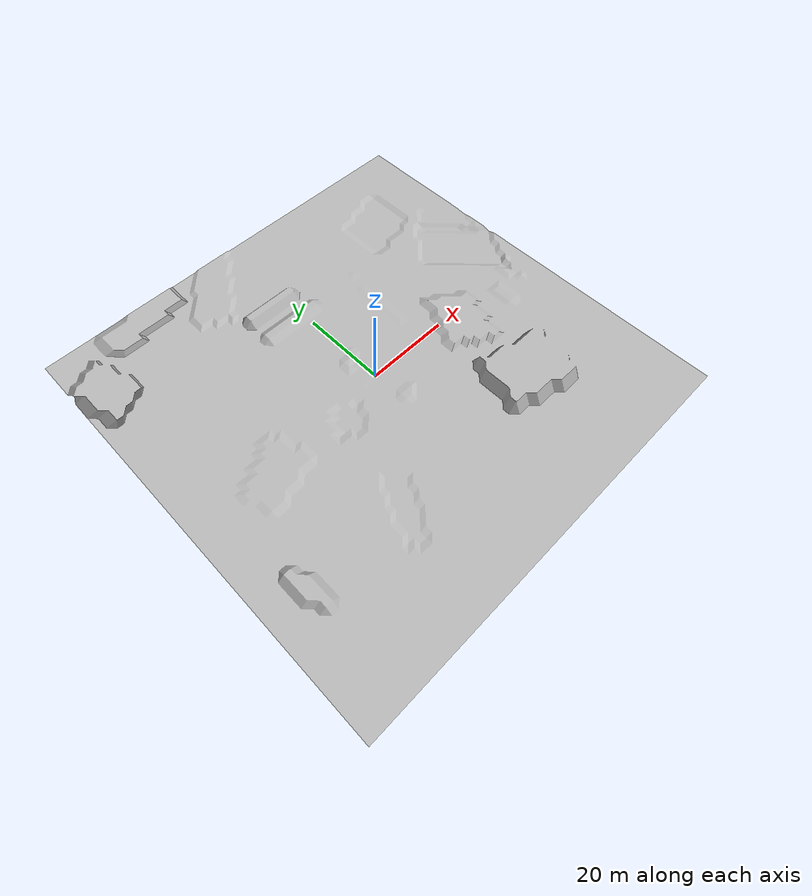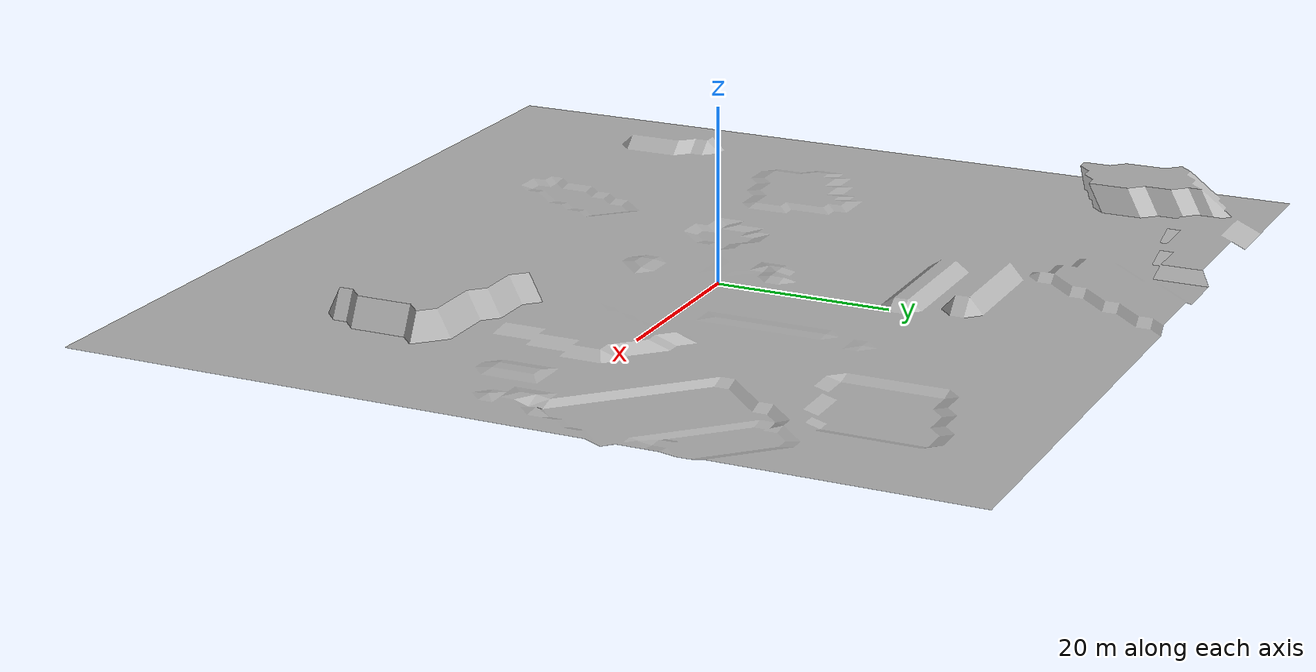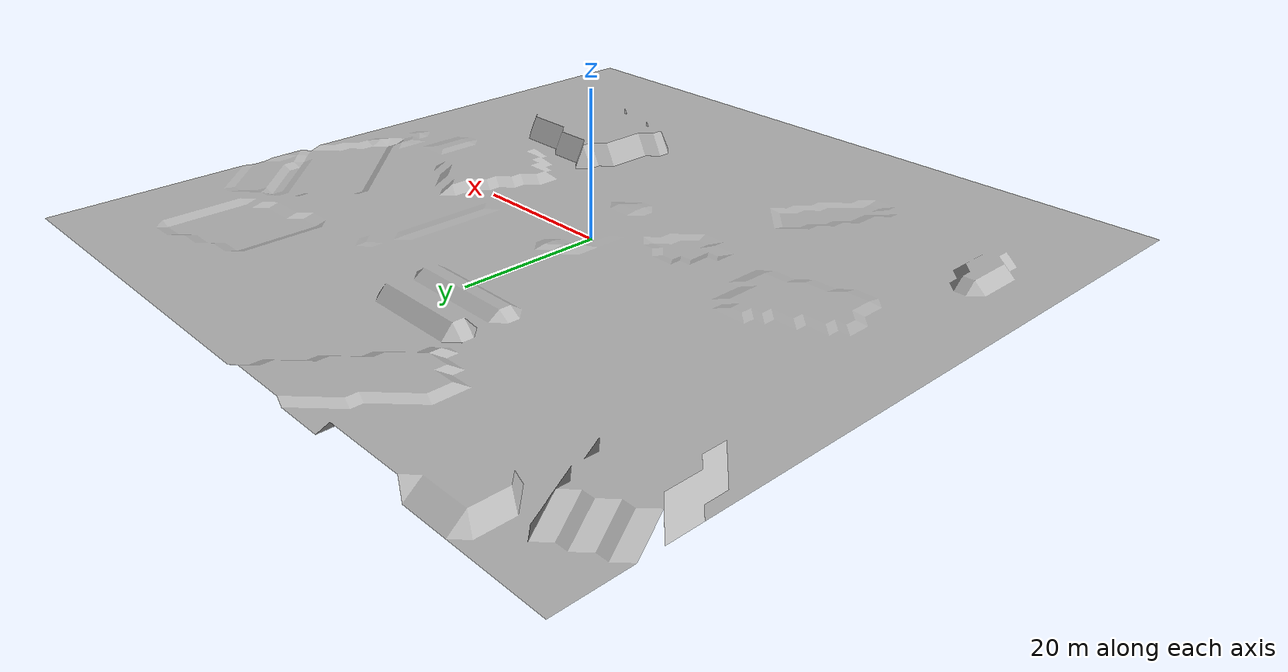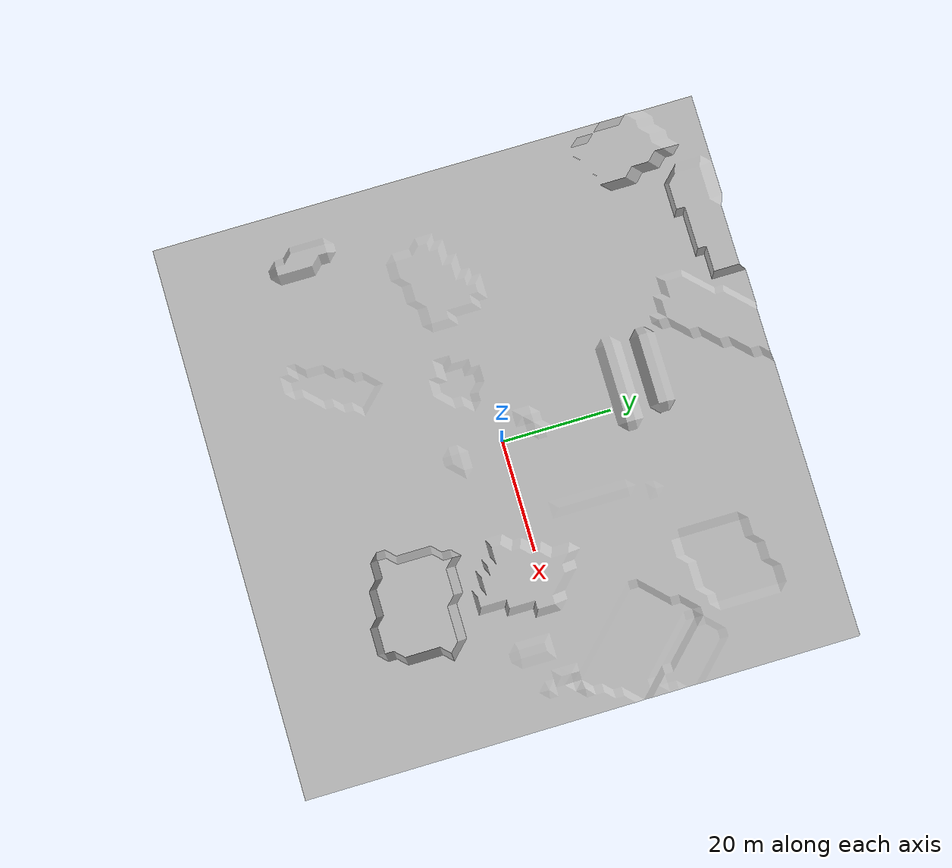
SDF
<?xml version="1.0" ?>
<sdf version="1.5">
  <world name="desert_world">
    <include> <!-- Add in a light source -->
      <uri>model://sun</uri>
    </include>
    <include> <!-- Add your custom model -->
      <uri>model://desert</uri>
      <name>desert</name>
      <pose>0 0 1.5 0 0 0</pose>
    </include>
  </world>
</sdf>

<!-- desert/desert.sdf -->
<sdf version="1.5">
  <model name="desert">
    <static>true</static>
    <link name="desert_link">
        <collision name="desert_collision">
         <geometry>
            <box>
                <size>1.70 0.51 0.55</size>
            </box>
        </geometry>
      </collision>

      <visual name="desert_mesh">
        <cast_shadows>true</cast_shadows>
        <geometry>
            <mesh>
                <uri>model://desert/meshes/desert.dae</uri>
            </mesh>
        </geometry>
      </visual>
    </link>
  </model>
</sdf>
